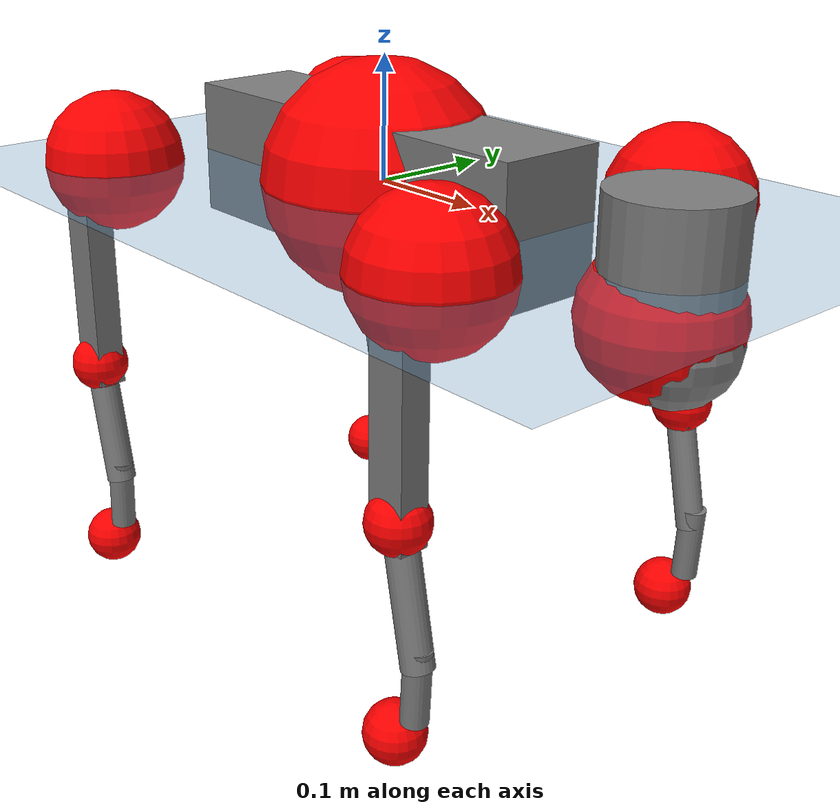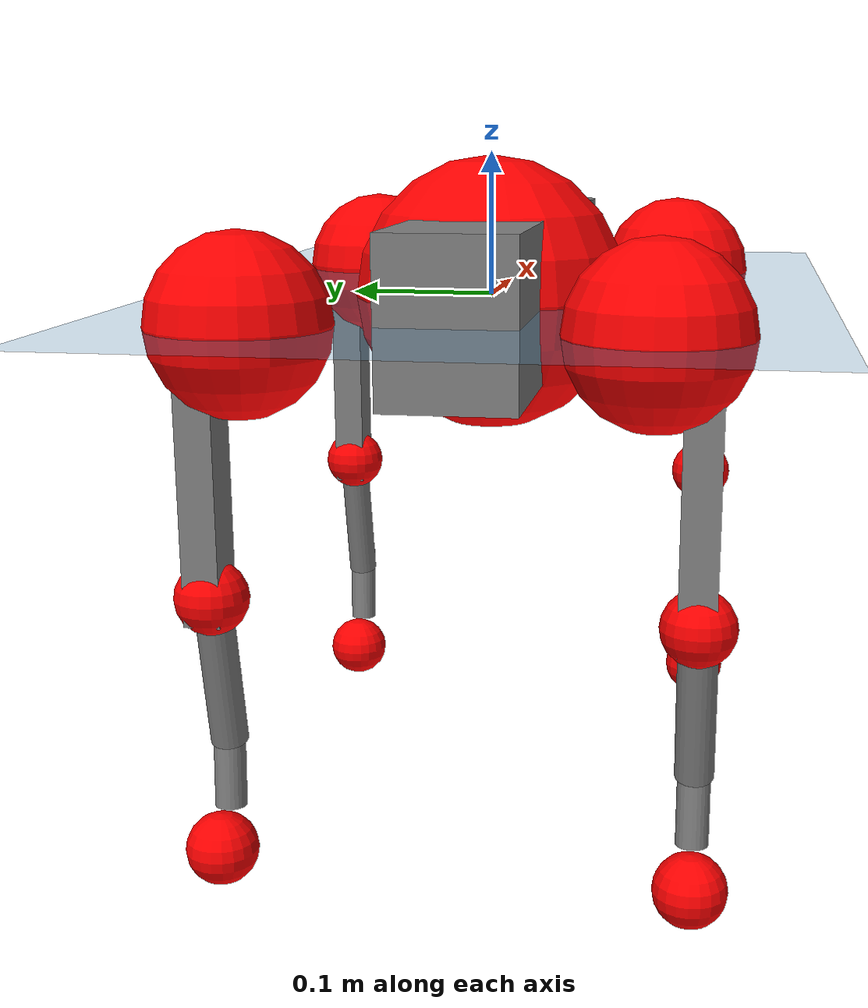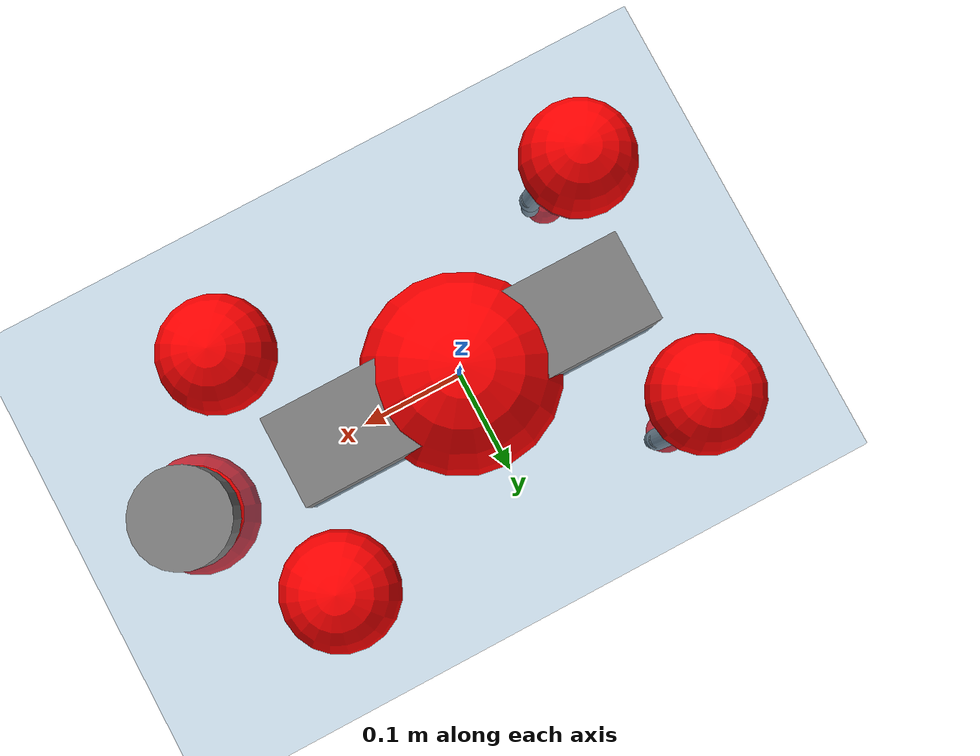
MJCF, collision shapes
<mujoco model="go2">
  <compiler angle="radian" assetdir="assets" balanceinertia="true" inertiafromgeom="false"/>

  <option timestep="0.005" density="1.2" viscosity="2e-05"/>

  <size nkey="1"/>

  <visual>
    <quality shadowsize="8192"/>
    <map shadowclip="0.5"/>
  </visual>

  <default>
    <default class="/">
      <geom contype="0" conaffinity="0" group="1" solref="-1000 -80"/>
      <site size="0.01 0.005 0.005" group="5"/>
      <general forcelimited="true" biastype="affine" gainprm="20" biasprm="0 -20 -0.5"/>
      <default class="go2">
        <joint armature="0.01" damping="0.01" frictionloss="0.2"/>
        <geom condim="1" margin="0.001"/>
        <default class="visual">
          <geom type="mesh" group="2"/>
        </default>
        <default class="collision">
          <geom group="3"/>
          <default class="foot">
            <geom size="0.022 0 0" condim="6" priority="1" friction="0.8 0.02 0.01" solimp="0.015 1 0.022"/>
          </default>
        </default>
        <default class="reward_collision_sphere">
          <geom group="5" rgba="1 0 0 1"/>
        </default>
      </default>
    </default>
  </default>

  <asset>
    <texture type="skybox" colorspace="auto" name="//unnamed_texture_0" builtin="gradient" rgb1="0.95 0.95 0.95" rgb2="0.95 0.95 0.95" width="100" height="600"/>
    <texture type="2d" colorspace="auto" name="texplane" builtin="checker" rgb1="0.345 0.575 0.748" rgb2="0.345 0.575 0.748" markrgb="1 1 1" width="512" height="512"/>
    <material name="MatPlane" class="/" texture="texplane" texuniform="true" texrepeat="2 2" specular="0.9"/>
    <material name="metal" class="/" rgba="0.9 0.95 0.95 1"/>
    <material name="black" class="/" rgba="0 0 0 1"/>
    <material name="white" class="/"/>
    <material name="gray" class="/" rgba="0.671705 0.692426 0.77427 1"/>
    <mesh name="base_0" class="/" file="base_0.obj"/>
    <mesh name="base_1" class="/" file="base_1.obj"/>
    <mesh name="base_2" class="/" file="base_2.obj"/>
    <mesh name="base_3" class="/" file="base_3.obj"/>
    <mesh name="base_4" class="/" file="base_4.obj"/>
    <mesh name="hip_0" class="/" file="hip_0.obj"/>
    <mesh name="hip_1" class="/" file="hip_1.obj"/>
    <mesh name="thigh_0" class="/" file="thigh_0.obj"/>
    <mesh name="thigh_1" class="/" file="thigh_1.obj"/>
    <mesh name="thigh_mirror_0" class="/" file="thigh_mirror_0.obj"/>
    <mesh name="thigh_mirror_1" class="/" file="thigh_mirror_1.obj"/>
    <mesh name="calf_0" class="/" file="calf_0.obj"/>
    <mesh name="calf_1" class="/" file="calf_1.obj"/>
    <mesh name="calf_mirror_0" class="/" file="calf_mirror_0.obj"/>
    <mesh name="calf_mirror_1" class="/" file="calf_mirror_1.obj"/>
    <mesh name="foot" class="/" file="foot.obj"/>
  </asset>

  <worldbody>
    <geom name="floor" class="/" size="100 100 0.125" type="plane" group="0" material="MatPlane"/>
    <light name="toplight_shadow" class="/" pos="0 0 5" dir="0.0990148 0.0990148 -0.990148" type="directional" ambient="0.04 0.04 0.04" diffuse="0.55 0.55 0.55" specular="0.12 0.12 0.12"/>
    <light name="toplight_fill" class="/" pos="0 0 5" dir="0.0990148 0.0990148 -0.990148" type="directional" castshadow="false" ambient="0.04 0.04 0.04" diffuse="0.3 0.3 0.3" specular="0.08 0.08 0.08"/>
    <body name="trunk" childclass="go2" pos="-0.00219819 -0.000468103 0.00103017" quat="1 -0.000281119 -4.19495e-05 -0.000553817">
      <inertial pos="0.0185872 -0.000480175 -0.00430593" quat="-0.00377256 0.715912 0.000204897 0.698181" mass="6.18648" diaginertia="0.110462 0.145728 0.00892397"/>
      <joint name="//unnamed_joint_0" type="free" armature="0" damping="0" frictionloss="0"/>
      <geom name="//unnamed_geom_1" class="visual" material="black" mesh="base_0"/>
      <geom name="//unnamed_geom_2" class="visual" material="black" mesh="base_1"/>
      <geom name="//unnamed_geom_3" class="visual" material="black" mesh="base_2"/>
      <geom name="//unnamed_geom_4" class="visual" material="white" mesh="base_3"/>
      <geom name="//unnamed_geom_5" class="visual" material="gray" mesh="base_4"/>
      <geom name="trunk_1" class="collision" size="0.181652 0.0451474 0.0550461" type="box"/>
      <geom name="trunk_2" class="collision" size="0.048286 0.0434574" pos="0.286021 0 0.00813357" type="cylinder"/>
      <geom name="trunk_3" class="collision" size="0.0453889" pos="0.29405 0 -0.0488014"/>
      <geom name="//unnamed_geom_9" class="reward_collision_sphere" size="0.0965721"/>
      <geom name="//unnamed_geom_10" class="reward_collision_sphere" size="0.0579432" pos="0.281003 0 -0.0366011"/>
      <site name="imu" pos="-0.0265318 -0.00516384 0.0381873" size="0.00965721"/>
      <camera name="track" pos="0 -2.16045 0" quat="0.707107 0.707107 0 0" mode="trackcom"/>
      <camera name="ego_camera" pos="0.313118 0 0.0366011" quat="-0.5 -0.5 0.5 0.5"/>
      <body name="FL_hip" pos="0.193789 0.0505927 0.00161726" quat="0.999999 -0.000483026 -0.000847547 -0.000311205">
        <inertial pos="-0.00771757 0.00303611 0.000396268" quat="0.497719 0.498171 0.505415 0.498655" mass="0.620074" diaginertia="0.000916493 0.000872244 0.000173307"/>
        <joint name="FL_hip_joint" pos="0 0 0" axis="0.999996 0.00148867 -0.00223793" stiffness="0.00311057" range="-1.05416 1.01418" armature="0.010108" damping="0.000814414" frictionloss="0.183676"/>
        <geom name="//unnamed_geom_11" class="visual" material="metal" mesh="hip_0"/>
        <geom name="//unnamed_geom_12" class="visual" material="gray" mesh="hip_1"/>
        <geom name="//unnamed_geom_13" class="collision" size="0.0444232 0.0193144" pos="0 0.0864179 0" quat="0.707107 0.707107 0 0" type="cylinder"/>
        <geom name="//unnamed_geom_14" class="reward_collision_sphere" size="0.0579432" pos="0 0.0756156 0"/>
        <body name="FL_thigh" pos="-0.000235533 0.10315 0.00144828" quat="1 -9.89517e-06 1.16939e-05 -3.81836e-06">
          <inertial pos="-0.00164001 -0.023349 -0.024713" quat="0.830685 0.0848373 -0.0206753 0.549852" mass="1.04525" diaginertia="0.00601398 0.00851213 0.000316765"/>
          <joint name="FL_thigh_joint" pos="0 0 0" axis="-0.0022794 0.999997 -0.000390001" stiffness="0.0144627" range="-1.59278 3.51601" armature="0.0100559" damping="0" frictionloss="0.185861"/>
          <geom name="//unnamed_geom_15" class="visual" material="metal" mesh="thigh_0"/>
          <geom name="//unnamed_geom_16" class="visual" material="gray" mesh="thigh_1"/>
          <geom name="//unnamed_geom_17" class="collision" size="0.102849 0.0118301 0.0164173" pos="0 0 -0.0866225" quat="0.707107 0 0.707107 0" type="box"/>
          <body name="FL_calf" pos="-6.16368e-05 -0.0009355 -0.174001" quat="1 -7.49177e-06 -7.23391e-06 6.37339e-06">
            <inertial pos="0.00613322 -0.000981397 -0.115553" quat="0.70763 0.00722224 -0.00937652 0.706484" mass="0.214945" diaginertia="0.00153371 0.0021317 1.88441e-05"/>
            <joint name="FL_calf_joint" pos="0 0 0" axis="0.00686379 0.999958 0.00601669" range="-2.73572 -0.86347" armature="0.00991542" damping="0.00447097" frictionloss="0.189682"/>
            <geom name="//unnamed_geom_18" class="visual" material="gray" mesh="calf_0"/>
            <geom name="//unnamed_geom_19" class="visual" material="black" mesh="calf_1"/>
            <geom name="FL_calf0" class="collision" size="0.0115886 0.0579432" pos="0.00802866 0 -0.0488014" quat="0.994493 0 -0.104807 0" type="cylinder"/>
            <geom name="//unnamed_geom_21" class="collision" size="0.0106229 0.0313859" pos="0.0200716 0 -0.120377" quat="0.999688 0 0.0249974 0" type="cylinder"/>
            <geom name="//unnamed_geom_22" class="visual" pos="0 0 -0.173245" quat="1 0 0 0" material="black" mesh="foot"/>
            <geom name="FL_foot" class="foot" size="0.0149157" pos="-0.00200716 0 -0.173245"/>
            <geom name="//unnamed_geom_24" class="reward_collision_sphere" size="0.024143"/>
            <geom name="//unnamed_geom_25" class="reward_collision_sphere" size="0.024143" pos="-0.00200716 0 -0.173245"/>
            <site name="FL_foot" class="foot" pos="-0.00200716 0 -0.173245" size="0.00965721"/>
          </body>
        </body>
      </body>
      <body name="FR_hip" pos="0.194521 -0.0480048 4.98115e-05" quat="1 0.00032812 0.000340408 0.000155268">
        <inertial pos="-0.00382162 -0.00267253 -0.000228807" quat="0.498571 0.505155 0.498771 0.497467" mass="0.633209" diaginertia="0.000901924 0.000884972 0.000171742"/>
        <joint name="FR_hip_joint" pos="0 0 0" axis="0.999995 0.00309223 0.000906931" range="-1.05648 1.05181" armature="0.00852063" damping="0.0204481" frictionloss="0.21495"/>
        <geom name="//unnamed_geom_26" class="visual" pos="0 2.32483e-09 9.97168e-08" quat="4.63268e-05 1 0 0" material="metal" mesh="hip_0"/>
        <geom name="//unnamed_geom_27" class="visual" pos="0 3.76883e-09 -2.46638e-07" quat="4.63268e-05 1 0 0" material="gray" mesh="hip_1"/>
        <geom name="//unnamed_geom_28" class="collision" size="0.0444232 0.0193144" pos="0 -0.0864179 0" quat="0.707107 0.707107 0 0" type="cylinder"/>
        <geom name="//unnamed_geom_29" class="reward_collision_sphere" size="0.0579432" pos="0 -0.0756156 0"/>
        <body name="FR_thigh" pos="0.000495499 -0.102364 0.00246142" quat="1 0.000315517 0.000883949 0.000245026">
          <inertial pos="-0.00412103 0.0218626 -0.025652" quat="0.551014 -0.0183388 0.0850425 0.829949" mass="1.01931" diaginertia="0.00612211 0.00880653 0.000312123"/>
          <joint name="FR_thigh_joint" pos="0 0 0" axis="0.00269488 -0.999996 -0.000847989" range="-3.47343 1.59001" armature="0.0097569" damping="0.0130785" frictionloss="0.183877"/>
          <geom name="//unnamed_geom_30" class="visual" material="metal" mesh="thigh_mirror_0"/>
          <geom name="//unnamed_geom_31" class="visual" material="gray" mesh="thigh_mirror_1"/>
          <geom name="//unnamed_geom_32" class="collision" size="0.102849 0.0118301 0.0164173" pos="0 0 -0.0866225" quat="0.707107 0 0.707107 0" type="box"/>
          <body name="FR_calf" pos="-0.000160134 0.000365899 -0.172967" quat="1 2.36149e-05 3.97634e-05 6.83175e-06">
            <inertial pos="0.00575915 0.000578507 -0.114386" quat="0.703853 -0.00277559 0.00119762 0.710339" mass="0.219035" diaginertia="0.00157195 0.00217155 1.92643e-05"/>
            <joint name="FR_calf_joint" pos="0 0 0" axis="-0.00916954 -0.999956 -0.00173546" range="0.837302 2.71251" armature="0.00984414" damping="0.00837997" frictionloss="0.187522"/>
            <geom name="//unnamed_geom_33" class="visual" material="gray" mesh="calf_mirror_0"/>
            <geom name="//unnamed_geom_34" class="visual" material="black" mesh="calf_mirror_1"/>
            <geom name="FR_calf0" class="collision" size="0.0125544 0.0579432" pos="0.0100358 0 -0.0488014" quat="0.995004 0 -0.0998334 0" type="cylinder"/>
            <geom name="//unnamed_geom_36" class="collision" size="0.0106229 0.0313859" pos="0.0200716 0 -0.120377" quat="0.999688 0 0.0249974 0" type="cylinder"/>
            <geom name="//unnamed_geom_37" class="visual" pos="0 0 -0.173245" quat="1 0 0 0" material="black" mesh="foot"/>
            <geom name="FR_foot" class="foot" size="0.0230251" pos="-0.00200716 0 -0.173245"/>
            <geom name="//unnamed_geom_39" class="reward_collision_sphere" size="0.024143"/>
            <geom name="//unnamed_geom_40" class="reward_collision_sphere" size="0.024143" pos="-0.00200716 0 -0.173245"/>
            <site name="FR_foot" class="foot" pos="-0.00200716 0 -0.173245" size="0.00965721"/>
          </body>
        </body>
      </body>
      <body name="RL_hip" pos="-0.193044 0.0490868 -0.000319481" quat="0.999999 -0.00024012 -0.00121575 -0.000211816">
        <inertial pos="0.00750382 0.00196031 0.000288555" quat="0.505549 0.498284 0.49667 0.499451" mass="0.60912" diaginertia="0.0009012 0.000886632 0.000172698"/>
        <joint name="RL_hip_joint" pos="0 0 0" axis="-0.999883 -0.0149854 0.00316016" range="-1.04672 1.05491" armature="0.00964029" damping="0.0111809" frictionloss="0.183107"/>
        <geom name="//unnamed_geom_41" class="visual" pos="-1.65716e-09 0 -3.24842e-07" quat="4.63268e-05 0 1 0" material="metal" mesh="hip_0"/>
        <geom name="//unnamed_geom_42" class="visual" pos="-2.68646e-09 0 -2.88089e-07" quat="4.63268e-05 0 1 0" material="gray" mesh="hip_1"/>
        <geom name="//unnamed_geom_43" class="collision" size="0.0444232 0.0193144" pos="0 0.0864179 0" quat="0.707107 0.707107 0 0" type="cylinder"/>
        <geom name="//unnamed_geom_44" class="reward_collision_sphere" size="0.0579432" pos="0 0.0756156 0"/>
        <body name="RL_thigh" pos="-0.00206172 0.101843 0.000341977" quat="0.999999 0.000777898 -8.55517e-05 -0.000701147">
          <inertial pos="-0.00339546 -0.024048 -0.0267587" quat="0.826063 0.0806627 -0.0173962 0.557504" mass="1.01847" diaginertia="0.00599271 0.00847504 0.000308812"/>
          <joint name="RL_thigh_joint" pos="0 0 0" axis="0.000705105 0.999998 -0.00188583" stiffness="0.00341039" range="-0.529741 4.5265" armature="0.00954387" damping="0" frictionloss="0.203065"/>
          <geom name="//unnamed_geom_45" class="visual" material="metal" mesh="thigh_0"/>
          <geom name="//unnamed_geom_46" class="visual" material="gray" mesh="thigh_1"/>
          <geom name="//unnamed_geom_47" class="collision" size="0.102849 0.0118301 0.0164173" pos="0 0 -0.0866225" quat="0.707107 0 0.707107 0" type="box"/>
          <body name="RL_calf" pos="0.000706686 -0.00145597 -0.174386" quat="1 -3.51205e-05 -4.79596e-05 -2.40288e-05">
            <inertial pos="0.00626483 -0.000626975 -0.11526" quat="0.710661 0.00149887 -0.00476989 0.703517" mass="0.217971" diaginertia="0.00151259 0.00214907 1.88175e-05"/>
            <joint name="RL_calf_joint" pos="0 0 0" axis="0.0035993 0.999987 0.00352332" stiffness="0.00149073" range="-2.70618 -0.834063" armature="0.0100261" damping="0" frictionloss="0.195296"/>
            <geom name="//unnamed_geom_48" class="visual" material="gray" mesh="calf_0"/>
            <geom name="//unnamed_geom_49" class="visual" material="black" mesh="calf_1"/>
            <geom name="RL_calf0" class="collision" size="0.0125544 0.0579432" pos="0.0100358 0 -0.0488014" quat="0.995004 0 -0.0998334 0" type="cylinder"/>
            <geom name="//unnamed_geom_51" class="collision" size="0.0106229 0.0313859" pos="0.0200716 0 -0.120377" quat="0.999688 0 0.0249974 0" type="cylinder"/>
            <geom name="//unnamed_geom_52" class="visual" pos="0 0 -0.173245" quat="1 0 0 0" material="black" mesh="foot"/>
            <geom name="RL_foot" class="foot" size="0.01978" pos="-0.00200716 0 -0.173245"/>
            <geom name="//unnamed_geom_54" class="reward_collision_sphere" size="0.024143"/>
            <geom name="//unnamed_geom_55" class="reward_collision_sphere" size="0.024143" pos="-0.00200716 0 -0.173245"/>
            <site name="RL_foot" class="foot" pos="-0.00200716 0 -0.173245" size="0.00965721"/>
          </body>
        </body>
      </body>
      <body name="RR_hip" pos="-0.194242 -0.0529753 -0.00122726" quat="1 9.96334e-05 0.000128877 -7.40527e-05">
        <inertial pos="0.00535071 -0.000777984 1.63015e-05" quat="0.4991 0.503714 0.49154 0.505529" mass="0.613908" diaginertia="0.000899931 0.000880115 0.000173711"/>
        <joint name="RR_hip_joint" pos="0 0 0" axis="-1 0.000155285 -1.04884e-05" stiffness="0.00114914" range="-1.0448 1.04587" armature="0.0107828" damping="0.0180356" frictionloss="0.177091"/>
        <geom name="//unnamed_geom_56" class="visual" pos="1.65982e-09 2.32483e-09 -4.24559e-07" quat="2.14617e-09 4.63268e-05 4.63268e-05 -1" material="metal" mesh="hip_0"/>
        <geom name="//unnamed_geom_57" class="visual" pos="2.6799e-09 3.76883e-09 -4.14512e-08" quat="2.14617e-09 4.63268e-05 4.63268e-05 -1" material="gray" mesh="hip_1"/>
        <geom name="//unnamed_geom_58" class="collision" size="0.0444232 0.0193144" pos="0 -0.0864179 0" quat="0.707107 0.707107 0 0" type="cylinder"/>
        <geom name="//unnamed_geom_59" class="reward_collision_sphere" size="0.0579432" pos="0 -0.0756156 0"/>
        <body name="RR_thigh" pos="0.000106908 -0.103627 -0.00259436" quat="1 0.000109988 4.54493e-05 -5.1671e-05">
          <inertial pos="-0.00350811 0.0248269 -0.0266404" quat="0.551408 -0.0197037 0.0846314 0.829698" mass="1.06147" diaginertia="0.00621186 0.00870675 0.000309374"/>
          <joint name="RR_thigh_joint" pos="0 0 0" axis="-5.55298e-05 -1 4.93179e-05" range="-4.57625 0.522942" armature="0.00939487" damping="0.020424" frictionloss="0.200077"/>
          <geom name="//unnamed_geom_60" class="visual" material="metal" mesh="thigh_mirror_0"/>
          <geom name="//unnamed_geom_61" class="visual" material="gray" mesh="thigh_mirror_1"/>
          <geom name="//unnamed_geom_62" class="collision" size="0.102849 0.0118301 0.0164173" pos="0 0 -0.0866225" quat="0.707107 0 0.707107 0" type="box"/>
          <body name="RR_calf" pos="-0.00227568 -0.000789702 -0.174128" quat="1 -0.000108379 5.02723e-05 8.30842e-05">
            <inertial pos="0.00852783 0.000624968 -0.11573" quat="0.703528 -0.00113664 -0.00236092 0.710663" mass="0.217464" diaginertia="0.00146482 0.00207426 1.84305e-05"/>
            <joint name="RR_calf_joint" pos="0 0 0" axis="-0.00353787 -0.999975 0.00610267" range="0.852358 2.77502" armature="0.00912018" damping="0.0134937" frictionloss="0.185841"/>
            <geom name="//unnamed_geom_63" class="visual" material="gray" mesh="calf_mirror_0"/>
            <geom name="//unnamed_geom_64" class="visual" material="black" mesh="calf_mirror_1"/>
            <geom name="RR_calf0" class="collision" size="0.0125544 0.0579432" pos="0.0100358 0 -0.0488014" quat="0.995004 0 -0.0998334 0" type="cylinder"/>
            <geom name="//unnamed_geom_66" class="collision" size="0.0106229 0.0313859" pos="0.0200716 0 -0.120377" quat="0.999688 0 0.0249974 0" type="cylinder"/>
            <geom name="//unnamed_geom_67" class="visual" pos="0 0 -0.173245" quat="1 0 0 0" material="black" mesh="foot"/>
            <geom name="RR_foot" class="foot" size="0.0229738" pos="-0.00200716 0 -0.173245"/>
            <geom name="//unnamed_geom_69" class="reward_collision_sphere" size="0.024143"/>
            <geom name="//unnamed_geom_70" class="reward_collision_sphere" size="0.024143" pos="-0.00200716 0 -0.173245"/>
            <site name="RR_foot" class="foot" pos="-0.00200716 0 -0.173245" size="0.00965721"/>
          </body>
        </body>
      </body>
    </body>
  </worldbody>

  <contact>
    <pair class="/" geom1="floor" geom2="FL_foot" name="//unnamed_contact_0"/>
    <pair class="/" geom1="floor" geom2="FR_foot" name="//unnamed_contact_1"/>
    <pair class="/" geom1="floor" geom2="RL_foot" name="//unnamed_contact_2"/>
    <pair class="/" geom1="floor" geom2="RR_foot" name="//unnamed_contact_3"/>
  </contact>

  <actuator>
    <general name="FL_hip" class="/" joint="FL_hip_joint" forcerange="-22.4305 22.4305" gainprm="19.4492" biasprm="0 -19.4492 -0.484458"/>
    <general name="FL_thigh" class="/" joint="FL_thigh_joint" forcerange="-23.4687 23.4687" gainprm="19.4492" biasprm="0 -19.4492 -0.484458"/>
    <general name="FL_calf" class="/" joint="FL_calf_joint" forcerange="-44.0059 44.0059" gainprm="19.4492" biasprm="0 -19.4492 -0.484458"/>
    <general name="FR_hip" class="/" joint="FR_hip_joint" forcerange="-24.8881 24.8881" gainprm="19.4492" biasprm="0 -19.4492 -0.484458"/>
    <general name="FR_thigh" class="/" joint="FR_thigh_joint" forcerange="-22.8801 22.8801" gainprm="19.4492" biasprm="0 -19.4492 -0.484458"/>
    <general name="FR_calf" class="/" joint="FR_calf_joint" forcerange="-42.194 42.194" gainprm="19.4492" biasprm="0 -19.4492 -0.484458"/>
    <general name="RL_hip" class="/" joint="RL_hip_joint" forcerange="-22.4525 22.4525" gainprm="19.4492" biasprm="0 -19.4492 -0.484458"/>
    <general name="RL_thigh" class="/" joint="RL_thigh_joint" forcerange="-22.4931 22.4931" gainprm="19.4492" biasprm="0 -19.4492 -0.484458"/>
    <general name="RL_calf" class="/" joint="RL_calf_joint" forcerange="-44.7015 44.7015" gainprm="19.4492" biasprm="0 -19.4492 -0.484458"/>
    <general name="RR_hip" class="/" joint="RR_hip_joint" forcerange="-23.265 23.265" gainprm="19.4492" biasprm="0 -19.4492 -0.484458"/>
    <general name="RR_thigh" class="/" joint="RR_thigh_joint" forcerange="-23.6847 23.6847" gainprm="19.4492" biasprm="0 -19.4492 -0.484458"/>
    <general name="RR_calf" class="/" joint="RR_calf_joint" forcerange="-47.3489 47.3489" gainprm="19.4492" biasprm="0 -19.4492 -0.484458"/>
  </actuator>

  <sensor>
    <gyro site="imu" name="imu_angular_velocity"/>
    <velocimeter site="imu" name="imu_linear_velocity"/>
    <framelinvel objtype="site" objname="FL_foot" name="FL_foot_global_linear_velocity"/>
    <framelinvel objtype="site" objname="FR_foot" name="FR_foot_global_linear_velocity"/>
    <framelinvel objtype="site" objname="RL_foot" name="RL_foot_global_linear_velocity"/>
    <framelinvel objtype="site" objname="RR_foot" name="RR_foot_global_linear_velocity"/>
  </sensor>

  <keyframe>
    <key name="home" qpos="0 0 0.325 1 0 0 0 0.1 0.8 -1.5 -0.1 -0.8 1.5 -0.1 0.8 -1.5 0.1 -0.8 1.5"/>
  </keyframe>
</mujoco>
